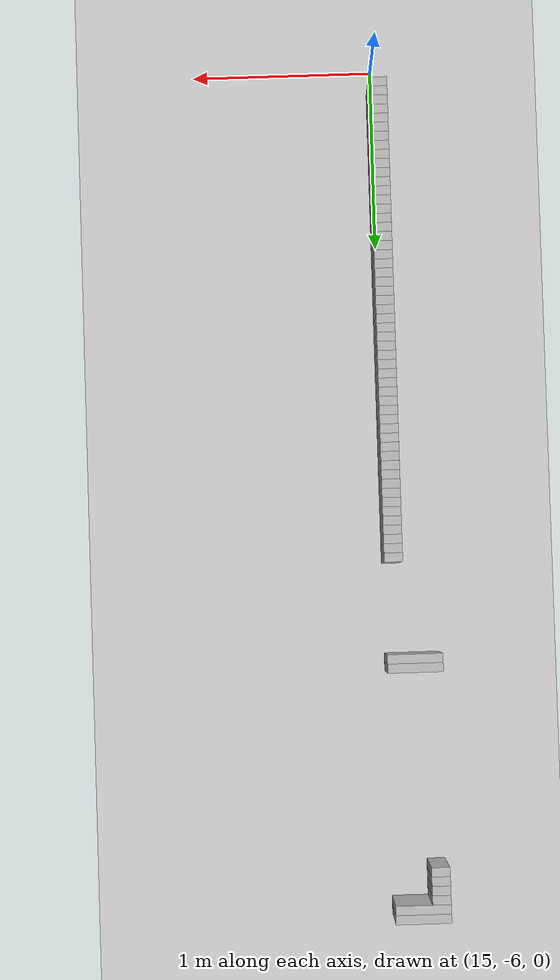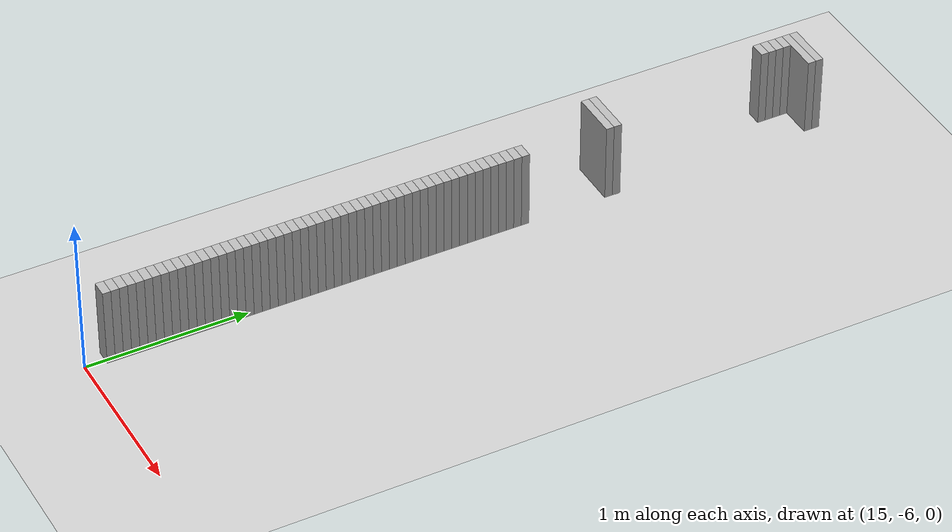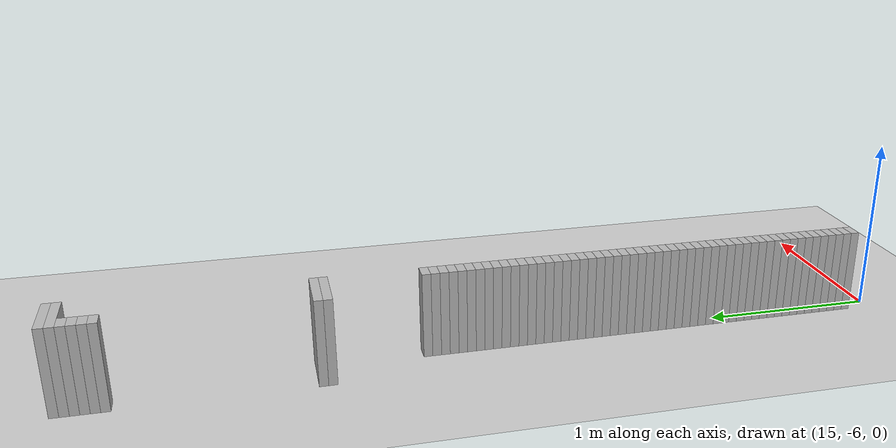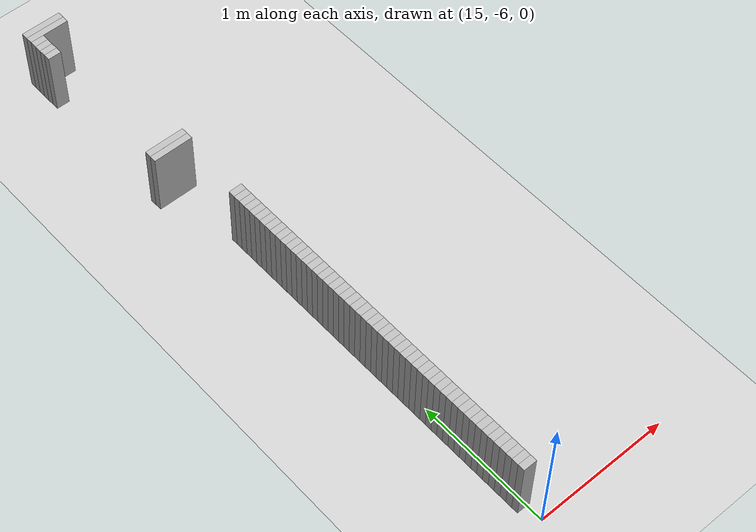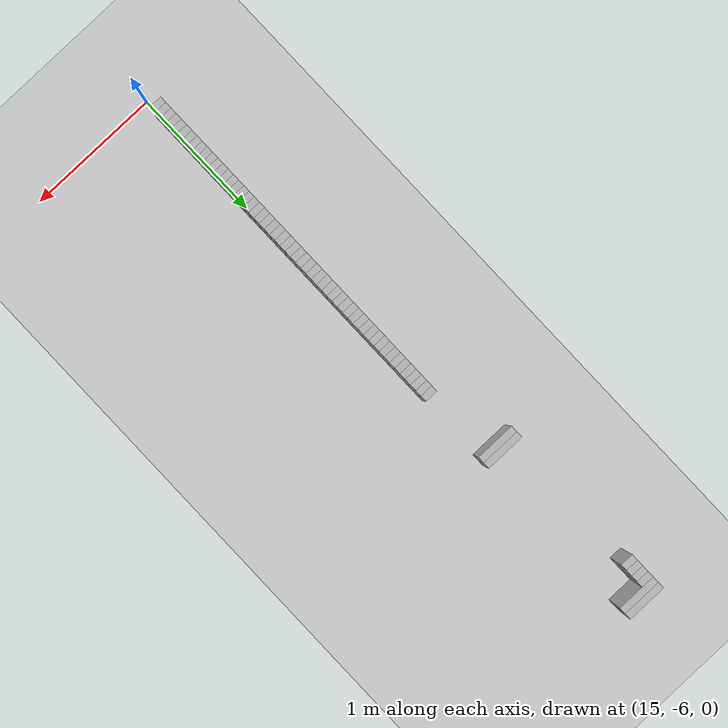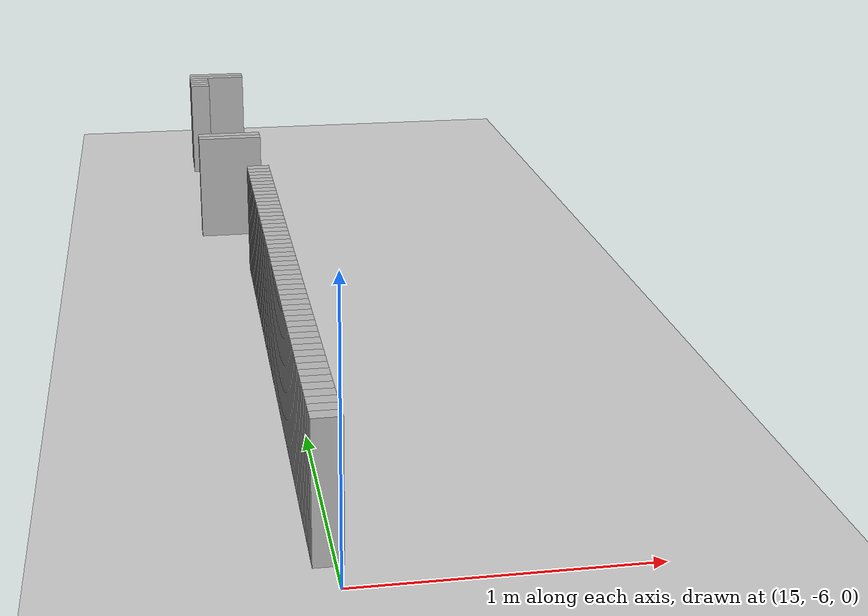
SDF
<sdf version="1.6">
 <world name="optimized_map_world">
  <include><uri>model://sun</uri></include>
  <include><uri>model://ground_plane</uri></include>
  <model name="obstacle_136">
   <static>true</static>
   <link name="link">
    <collision name="collision">
     <geometry><box><size>0.30000000000000004 0.05 0.5</size></box></geometry>
    </collision>
    <visual name="visual"><geometry><box><size>0.30000000000000004 0.05 0.5</size></box></geometry></visual>
   </link>
   <pose>14.875000000000004 -1.3000000000000007 0.25 0 0 0</pose>
  </model>
  <model name="obstacle_140">
   <static>true</static>
   <link name="link">
    <collision name="collision">
     <geometry><box><size>0.30000000000000004 0.05 0.5</size></box></geometry>
    </collision>
    <visual name="visual"><geometry><box><size>0.30000000000000004 0.05 0.5</size></box></geometry></visual>
   </link>
   <pose>14.875000000000004 -1.3500000000000014 0.25 0 0 0</pose>
  </model>
  <model name="obstacle_144">
   <static>true</static>
   <link name="link">
    <collision name="collision"><geometry><box><size>0.1 0.05 0.5</size></box></geometry></collision>
    <visual name="visual"><geometry><box><size>0.1 0.05 0.5</size></box></geometry></visual>
   </link>
   <pose>14.775000000000002 -1.3999999999999986 0.25 0 0 0</pose>
  </model>
  <model name="obstacle_148">
   <static>true</static>
   <link name="link">
    <collision name="collision"><geometry><box><size>0.1 0.05 0.5</size></box></geometry></collision>
    <visual name="visual"><geometry><box><size>0.1 0.05 0.5</size></box></geometry></visual>
   </link>
   <pose>14.775000000000002 -1.4499999999999993 0.25 0 0 0</pose>
  </model>
  <model name="obstacle_152">
   <static>true</static>
   <link name="link">
    <collision name="collision"><geometry><box><size>0.1 0.05 0.5</size></box></geometry></collision>
    <visual name="visual"><geometry><box><size>0.1 0.05 0.5</size></box></geometry></visual>
   </link>
   <pose>14.775000000000002 -1.5 0.25 0 0 0</pose>
  </model>
  <model name="obstacle_156">
   <static>true</static>
   <link name="link">
    <collision name="collision"><geometry><box><size>0.1 0.05 0.5</size></box></geometry></collision>
    <visual name="visual"><geometry><box><size>0.1 0.05 0.5</size></box></geometry></visual>
   </link>
   <pose>14.775000000000002 -1.5500000000000007 0.25 0 0 0</pose>
  </model>
  <model name="obstacle_244">
   <static>true</static>
   <link name="link">
    <collision name="collision">
     <geometry><box><size>0.30000000000000004 0.05 0.5</size></box></geometry>
    </collision>
    <visual name="visual"><geometry><box><size>0.30000000000000004 0.05 0.5</size></box></geometry></visual>
   </link>
   <pose>14.875000000000004 -2.6499999999999986 0.25 0 0 0</pose>
  </model>
  <model name="obstacle_248">
   <static>true</static>
   <link name="link">
    <collision name="collision">
     <geometry><box><size>0.30000000000000004 0.05 0.5</size></box></geometry>
    </collision>
    <visual name="visual"><geometry><box><size>0.30000000000000004 0.05 0.5</size></box></geometry></visual>
   </link>
   <pose>14.875000000000004 -2.6999999999999993 0.25 0 0 0</pose>
  </model>
  <model name="obstacle_292">
   <static>true</static>
   <link name="link">
    <collision name="collision"><geometry><box><size>0.1 0.05 0.5</size></box></geometry></collision>
    <visual name="visual"><geometry><box><size>0.1 0.05 0.5</size></box></geometry></visual>
   </link>
   <pose>14.975000000000001 -3.25 0.25 0 0 0</pose>
  </model>
  <model name="obstacle_296">
   <static>true</static>
   <link name="link">
    <collision name="collision"><geometry><box><size>0.1 0.05 0.5</size></box></geometry></collision>
    <visual name="visual"><geometry><box><size>0.1 0.05 0.5</size></box></geometry></visual>
   </link>
   <pose>14.975000000000001 -3.3000000000000007 0.25 0 0 0</pose>
  </model>
  <model name="obstacle_300">
   <static>true</static>
   <link name="link">
    <collision name="collision"><geometry><box><size>0.1 0.05 0.5</size></box></geometry></collision>
    <visual name="visual"><geometry><box><size>0.1 0.05 0.5</size></box></geometry></visual>
   </link>
   <pose>14.975000000000001 -3.3500000000000014 0.25 0 0 0</pose>
  </model>
  <model name="obstacle_304">
   <static>true</static>
   <link name="link">
    <collision name="collision"><geometry><box><size>0.1 0.05 0.5</size></box></geometry></collision>
    <visual name="visual"><geometry><box><size>0.1 0.05 0.5</size></box></geometry></visual>
   </link>
   <pose>14.975000000000001 -3.3999999999999986 0.25 0 0 0</pose>
  </model>
  <model name="obstacle_308">
   <static>true</static>
   <link name="link">
    <collision name="collision"><geometry><box><size>0.1 0.05 0.5</size></box></geometry></collision>
    <visual name="visual"><geometry><box><size>0.1 0.05 0.5</size></box></geometry></visual>
   </link>
   <pose>14.975000000000001 -3.4499999999999993 0.25 0 0 0</pose>
  </model>
  <model name="obstacle_312">
   <static>true</static>
   <link name="link">
    <collision name="collision"><geometry><box><size>0.1 0.05 0.5</size></box></geometry></collision>
    <visual name="visual"><geometry><box><size>0.1 0.05 0.5</size></box></geometry></visual>
   </link>
   <pose>14.975000000000001 -3.5 0.25 0 0 0</pose>
  </model>
  <model name="obstacle_316">
   <static>true</static>
   <link name="link">
    <collision name="collision"><geometry><box><size>0.1 0.05 0.5</size></box></geometry></collision>
    <visual name="visual"><geometry><box><size>0.1 0.05 0.5</size></box></geometry></visual>
   </link>
   <pose>14.975000000000001 -3.5500000000000007 0.25 0 0 0</pose>
  </model>
  <model name="obstacle_320">
   <static>true</static>
   <link name="link">
    <collision name="collision"><geometry><box><size>0.1 0.05 0.5</size></box></geometry></collision>
    <visual name="visual"><geometry><box><size>0.1 0.05 0.5</size></box></geometry></visual>
   </link>
   <pose>14.975000000000001 -3.6000000000000014 0.25 0 0 0</pose>
  </model>
  <model name="obstacle_324">
   <static>true</static>
   <link name="link">
    <collision name="collision"><geometry><box><size>0.1 0.05 0.5</size></box></geometry></collision>
    <visual name="visual"><geometry><box><size>0.1 0.05 0.5</size></box></geometry></visual>
   </link>
   <pose>14.975000000000001 -3.6499999999999986 0.25 0 0 0</pose>
  </model>
  <model name="obstacle_328">
   <static>true</static>
   <link name="link">
    <collision name="collision"><geometry><box><size>0.1 0.05 0.5</size></box></geometry></collision>
    <visual name="visual"><geometry><box><size>0.1 0.05 0.5</size></box></geometry></visual>
   </link>
   <pose>14.975000000000001 -3.6999999999999993 0.25 0 0 0</pose>
  </model>
  <model name="obstacle_332">
   <static>true</static>
   <link name="link">
    <collision name="collision"><geometry><box><size>0.1 0.05 0.5</size></box></geometry></collision>
    <visual name="visual"><geometry><box><size>0.1 0.05 0.5</size></box></geometry></visual>
   </link>
   <pose>14.975000000000001 -3.75 0.25 0 0 0</pose>
  </model>
  <model name="obstacle_336">
   <static>true</static>
   <link name="link">
    <collision name="collision"><geometry><box><size>0.1 0.05 0.5</size></box></geometry></collision>
    <visual name="visual"><geometry><box><size>0.1 0.05 0.5</size></box></geometry></visual>
   </link>
   <pose>14.975000000000001 -3.8000000000000007 0.25 0 0 0</pose>
  </model>
  <model name="obstacle_340">
   <static>true</static>
   <link name="link">
    <collision name="collision"><geometry><box><size>0.1 0.05 0.5</size></box></geometry></collision>
    <visual name="visual"><geometry><box><size>0.1 0.05 0.5</size></box></geometry></visual>
   </link>
   <pose>14.975000000000001 -3.8500000000000014 0.25 0 0 0</pose>
  </model>
  <model name="obstacle_344">
   <static>true</static>
   <link name="link">
    <collision name="collision"><geometry><box><size>0.1 0.05 0.5</size></box></geometry></collision>
    <visual name="visual"><geometry><box><size>0.1 0.05 0.5</size></box></geometry></visual>
   </link>
   <pose>14.975000000000001 -3.8999999999999986 0.25 0 0 0</pose>
  </model>
  <model name="obstacle_348">
   <static>true</static>
   <link name="link">
    <collision name="collision"><geometry><box><size>0.1 0.05 0.5</size></box></geometry></collision>
    <visual name="visual"><geometry><box><size>0.1 0.05 0.5</size></box></geometry></visual>
   </link>
   <pose>14.975000000000001 -3.9499999999999993 0.25 0 0 0</pose>
  </model>
  <model name="obstacle_352">
   <static>true</static>
   <link name="link">
    <collision name="collision"><geometry><box><size>0.1 0.05 0.5</size></box></geometry></collision>
    <visual name="visual"><geometry><box><size>0.1 0.05 0.5</size></box></geometry></visual>
   </link>
   <pose>14.975000000000001 -4.0 0.25 0 0 0</pose>
  </model>
  <model name="obstacle_356">
   <static>true</static>
   <link name="link">
    <collision name="collision"><geometry><box><size>0.1 0.05 0.5</size></box></geometry></collision>
    <visual name="visual"><geometry><box><size>0.1 0.05 0.5</size></box></geometry></visual>
   </link>
   <pose>14.975000000000001 -4.050000000000001 0.25 0 0 0</pose>
  </model>
  <model name="obstacle_360">
   <static>true</static>
   <link name="link">
    <collision name="collision"><geometry><box><size>0.1 0.05 0.5</size></box></geometry></collision>
    <visual name="visual"><geometry><box><size>0.1 0.05 0.5</size></box></geometry></visual>
   </link>
   <pose>14.975000000000001 -4.100000000000001 0.25 0 0 0</pose>
  </model>
  <model name="obstacle_364">
   <static>true</static>
   <link name="link">
    <collision name="collision"><geometry><box><size>0.1 0.05 0.5</size></box></geometry></collision>
    <visual name="visual"><geometry><box><size>0.1 0.05 0.5</size></box></geometry></visual>
   </link>
   <pose>14.975000000000001 -4.149999999999999 0.25 0 0 0</pose>
  </model>
  <model name="obstacle_368">
   <static>true</static>
   <link name="link">
    <collision name="collision"><geometry><box><size>0.1 0.05 0.5</size></box></geometry></collision>
    <visual name="visual"><geometry><box><size>0.1 0.05 0.5</size></box></geometry></visual>
   </link>
   <pose>14.975000000000001 -4.199999999999999 0.25 0 0 0</pose>
  </model>
  <model name="obstacle_372">
   <static>true</static>
   <link name="link">
    <collision name="collision"><geometry><box><size>0.1 0.05 0.5</size></box></geometry></collision>
    <visual name="visual"><geometry><box><size>0.1 0.05 0.5</size></box></geometry></visual>
   </link>
   <pose>14.975000000000001 -4.25 0.25 0 0 0</pose>
  </model>
  <model name="obstacle_376">
   <static>true</static>
   <link name="link">
    <collision name="collision"><geometry><box><size>0.1 0.05 0.5</size></box></geometry></collision>
    <visual name="visual"><geometry><box><size>0.1 0.05 0.5</size></box></geometry></visual>
   </link>
   <pose>14.975000000000001 -4.300000000000001 0.25 0 0 0</pose>
  </model>
  <model name="obstacle_380">
   <static>true</static>
   <link name="link">
    <collision name="collision"><geometry><box><size>0.1 0.05 0.5</size></box></geometry></collision>
    <visual name="visual"><geometry><box><size>0.1 0.05 0.5</size></box></geometry></visual>
   </link>
   <pose>14.975000000000001 -4.35 0.25 0 0 0</pose>
  </model>
  <model name="obstacle_384">
   <static>true</static>
   <link name="link">
    <collision name="collision"><geometry><box><size>0.1 0.05 0.5</size></box></geometry></collision>
    <visual name="visual"><geometry><box><size>0.1 0.05 0.5</size></box></geometry></visual>
   </link>
   <pose>14.975000000000001 -4.4 0.25 0 0 0</pose>
  </model>
  <model name="obstacle_388">
   <static>true</static>
   <link name="link">
    <collision name="collision"><geometry><box><size>0.1 0.05 0.5</size></box></geometry></collision>
    <visual name="visual"><geometry><box><size>0.1 0.05 0.5</size></box></geometry></visual>
   </link>
   <pose>14.975000000000001 -4.449999999999999 0.25 0 0 0</pose>
  </model>
  <model name="obstacle_392">
   <static>true</static>
   <link name="link">
    <collision name="collision"><geometry><box><size>0.1 0.05 0.5</size></box></geometry></collision>
    <visual name="visual"><geometry><box><size>0.1 0.05 0.5</size></box></geometry></visual>
   </link>
   <pose>14.975000000000001 -4.5 0.25 0 0 0</pose>
  </model>
  <model name="obstacle_396">
   <static>true</static>
   <link name="link">
    <collision name="collision"><geometry><box><size>0.1 0.05 0.5</size></box></geometry></collision>
    <visual name="visual"><geometry><box><size>0.1 0.05 0.5</size></box></geometry></visual>
   </link>
   <pose>14.975000000000001 -4.550000000000001 0.25 0 0 0</pose>
  </model>
  <model name="obstacle_400">
   <static>true</static>
   <link name="link">
    <collision name="collision"><geometry><box><size>0.1 0.05 0.5</size></box></geometry></collision>
    <visual name="visual"><geometry><box><size>0.1 0.05 0.5</size></box></geometry></visual>
   </link>
   <pose>14.975000000000001 -4.6 0.25 0 0 0</pose>
  </model>
  <model name="obstacle_404">
   <static>true</static>
   <link name="link">
    <collision name="collision"><geometry><box><size>0.1 0.05 0.5</size></box></geometry></collision>
    <visual name="visual"><geometry><box><size>0.1 0.05 0.5</size></box></geometry></visual>
   </link>
   <pose>14.975000000000001 -4.65 0.25 0 0 0</pose>
  </model>
  <model name="obstacle_408">
   <static>true</static>
   <link name="link">
    <collision name="collision"><geometry><box><size>0.1 0.05 0.5</size></box></geometry></collision>
    <visual name="visual"><geometry><box><size>0.1 0.05 0.5</size></box></geometry></visual>
   </link>
   <pose>14.975000000000001 -4.699999999999999 0.25 0 0 0</pose>
  </model>
  <model name="obstacle_412">
   <static>true</static>
   <link name="link">
    <collision name="collision"><geometry><box><size>0.1 0.05 0.5</size></box></geometry></collision>
    <visual name="visual"><geometry><box><size>0.1 0.05 0.5</size></box></geometry></visual>
   </link>
   <pose>14.975000000000001 -4.75 0.25 0 0 0</pose>
  </model>
  <model name="obstacle_416">
   <static>true</static>
   <link name="link">
    <collision name="collision"><geometry><box><size>0.1 0.05 0.5</size></box></geometry></collision>
    <visual name="visual"><geometry><box><size>0.1 0.05 0.5</size></box></geometry></visual>
   </link>
   <pose>14.975000000000001 -4.800000000000001 0.25 0 0 0</pose>
  </model>
  <model name="obstacle_420">
   <static>true</static>
   <link name="link">
    <collision name="collision"><geometry><box><size>0.1 0.05 0.5</size></box></geometry></collision>
    <visual name="visual"><geometry><box><size>0.1 0.05 0.5</size></box></geometry></visual>
   </link>
   <pose>14.975000000000001 -4.85 0.25 0 0 0</pose>
  </model>
  <model name="obstacle_424">
   <static>true</static>
   <link name="link">
    <collision name="collision"><geometry><box><size>0.1 0.05 0.5</size></box></geometry></collision>
    <visual name="visual"><geometry><box><size>0.1 0.05 0.5</size></box></geometry></visual>
   </link>
   <pose>14.975000000000001 -4.9 0.25 0 0 0</pose>
  </model>
  <model name="obstacle_428">
   <static>true</static>
   <link name="link">
    <collision name="collision"><geometry><box><size>0.1 0.05 0.5</size></box></geometry></collision>
    <visual name="visual"><geometry><box><size>0.1 0.05 0.5</size></box></geometry></visual>
   </link>
   <pose>14.975000000000001 -4.949999999999999 0.25 0 0 0</pose>
  </model>
  <model name="obstacle_432">
   <static>true</static>
   <link name="link">
    <collision name="collision"><geometry><box><size>0.1 0.05 0.5</size></box></geometry></collision>
    <visual name="visual"><geometry><box><size>0.1 0.05 0.5</size></box></geometry></visual>
   </link>
   <pose>14.975000000000001 -5.0 0.25 0 0 0</pose>
  </model>
  <model name="obstacle_436">
   <static>true</static>
   <link name="link">
    <collision name="collision"><geometry><box><size>0.1 0.05 0.5</size></box></geometry></collision>
    <visual name="visual"><geometry><box><size>0.1 0.05 0.5</size></box></geometry></visual>
   </link>
   <pose>14.975000000000001 -5.050000000000001 0.25 0 0 0</pose>
  </model>
  <model name="obstacle_440">
   <static>true</static>
   <link name="link">
    <collision name="collision"><geometry><box><size>0.1 0.05 0.5</size></box></geometry></collision>
    <visual name="visual"><geometry><box><size>0.1 0.05 0.5</size></box></geometry></visual>
   </link>
   <pose>14.975000000000001 -5.1 0.25 0 0 0</pose>
  </model>
  <model name="obstacle_444">
   <static>true</static>
   <link name="link">
    <collision name="collision"><geometry><box><size>0.1 0.05 0.5</size></box></geometry></collision>
    <visual name="visual"><geometry><box><size>0.1 0.05 0.5</size></box></geometry></visual>
   </link>
   <pose>14.975000000000001 -5.15 0.25 0 0 0</pose>
  </model>
  <model name="obstacle_448">
   <static>true</static>
   <link name="link">
    <collision name="collision"><geometry><box><size>0.1 0.05 0.5</size></box></geometry></collision>
    <visual name="visual"><geometry><box><size>0.1 0.05 0.5</size></box></geometry></visual>
   </link>
   <pose>14.975000000000001 -5.199999999999999 0.25 0 0 0</pose>
  </model>
  <model name="obstacle_452">
   <static>true</static>
   <link name="link">
    <collision name="collision"><geometry><box><size>0.1 0.05 0.5</size></box></geometry></collision>
    <visual name="visual"><geometry><box><size>0.1 0.05 0.5</size></box></geometry></visual>
   </link>
   <pose>14.975000000000001 -5.25 0.25 0 0 0</pose>
  </model>
  <model name="obstacle_456">
   <static>true</static>
   <link name="link">
    <collision name="collision"><geometry><box><size>0.1 0.05 0.5</size></box></geometry></collision>
    <visual name="visual"><geometry><box><size>0.1 0.05 0.5</size></box></geometry></visual>
   </link>
   <pose>14.975000000000001 -5.300000000000001 0.25 0 0 0</pose>
  </model>
  <model name="obstacle_460">
   <static>true</static>
   <link name="link">
    <collision name="collision"><geometry><box><size>0.1 0.05 0.5</size></box></geometry></collision>
    <visual name="visual"><geometry><box><size>0.1 0.05 0.5</size></box></geometry></visual>
   </link>
   <pose>14.975000000000001 -5.35 0.25 0 0 0</pose>
  </model>
  <model name="obstacle_464">
   <static>true</static>
   <link name="link">
    <collision name="collision"><geometry><box><size>0.1 0.05 0.5</size></box></geometry></collision>
    <visual name="visual"><geometry><box><size>0.1 0.05 0.5</size></box></geometry></visual>
   </link>
   <pose>14.975000000000001 -5.4 0.25 0 0 0</pose>
  </model>
  <model name="obstacle_468">
   <static>true</static>
   <link name="link">
    <collision name="collision"><geometry><box><size>0.1 0.05 0.5</size></box></geometry></collision>
    <visual name="visual"><geometry><box><size>0.1 0.05 0.5</size></box></geometry></visual>
   </link>
   <pose>14.975000000000001 -5.449999999999999 0.25 0 0 0</pose>
  </model>
  <model name="obstacle_472">
   <static>true</static>
   <link name="link">
    <collision name="collision"><geometry><box><size>0.1 0.05 0.5</size></box></geometry></collision>
    <visual name="visual"><geometry><box><size>0.1 0.05 0.5</size></box></geometry></visual>
   </link>
   <pose>14.975000000000001 -5.5 0.25 0 0 0</pose>
  </model>
  <model name="obstacle_476">
   <static>true</static>
   <link name="link">
    <collision name="collision"><geometry><box><size>0.1 0.05 0.5</size></box></geometry></collision>
    <visual name="visual"><geometry><box><size>0.1 0.05 0.5</size></box></geometry></visual>
   </link>
   <pose>14.975000000000001 -5.550000000000001 0.25 0 0 0</pose>
  </model>
  <model name="obstacle_480">
   <static>true</static>
   <link name="link">
    <collision name="collision"><geometry><box><size>0.1 0.05 0.5</size></box></geometry></collision>
    <visual name="visual"><geometry><box><size>0.1 0.05 0.5</size></box></geometry></visual>
   </link>
   <pose>14.975000000000001 -5.6 0.25 0 0 0</pose>
  </model>
  <model name="obstacle_484">
   <static>true</static>
   <link name="link">
    <collision name="collision"><geometry><box><size>0.1 0.05 0.5</size></box></geometry></collision>
    <visual name="visual"><geometry><box><size>0.1 0.05 0.5</size></box></geometry></visual>
   </link>
   <pose>14.975000000000001 -5.65 0.25 0 0 0</pose>
  </model>
  <model name="obstacle_488">
   <static>true</static>
   <link name="link">
    <collision name="collision"><geometry><box><size>0.1 0.05 0.5</size></box></geometry></collision>
    <visual name="visual"><geometry><box><size>0.1 0.05 0.5</size></box></geometry></visual>
   </link>
   <pose>14.975000000000001 -5.699999999999999 0.25 0 0 0</pose>
  </model>
  <model name="obstacle_492">
   <static>true</static>
   <link name="link">
    <collision name="collision"><geometry><box><size>0.1 0.05 0.5</size></box></geometry></collision>
    <visual name="visual"><geometry><box><size>0.1 0.05 0.5</size></box></geometry></visual>
   </link>
   <pose>14.975000000000001 -5.75 0.25 0 0 0</pose>
  </model>
  <model name="obstacle_496">
   <static>true</static>
   <link name="link">
    <collision name="collision"><geometry><box><size>0.1 0.05 0.5</size></box></geometry></collision>
    <visual name="visual"><geometry><box><size>0.1 0.05 0.5</size></box></geometry></visual>
   </link>
   <pose>14.975000000000001 -5.800000000000001 0.25 0 0 0</pose>
  </model>
  <model name="obstacle_500">
   <static>true</static>
   <link name="link">
    <collision name="collision"><geometry><box><size>0.1 0.05 0.5</size></box></geometry></collision>
    <visual name="visual"><geometry><box><size>0.1 0.05 0.5</size></box></geometry></visual>
   </link>
   <pose>14.975000000000001 -5.85 0.25 0 0 0</pose>
  </model>
 </world>
</sdf>
